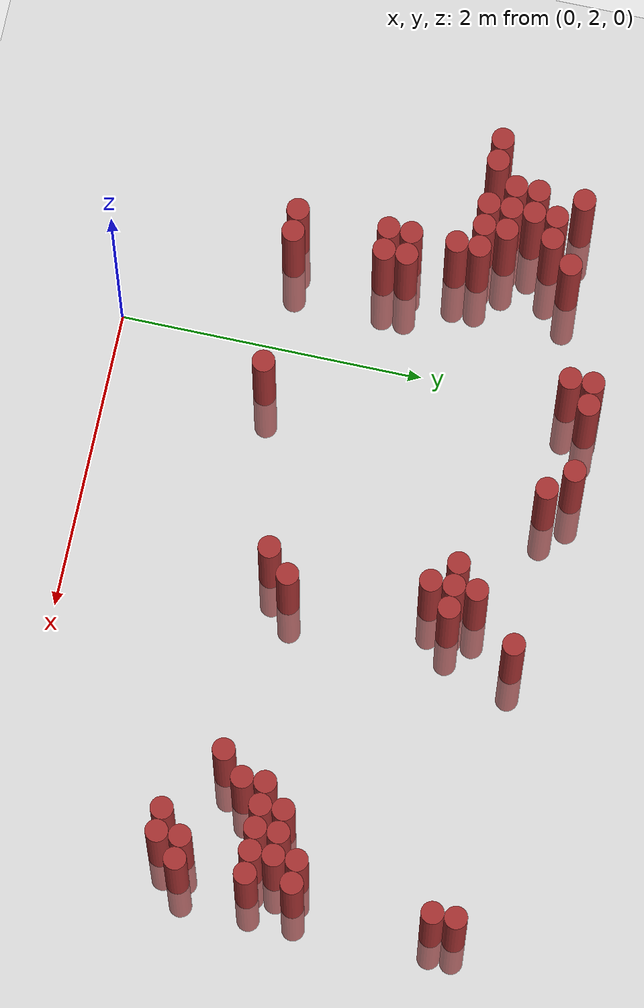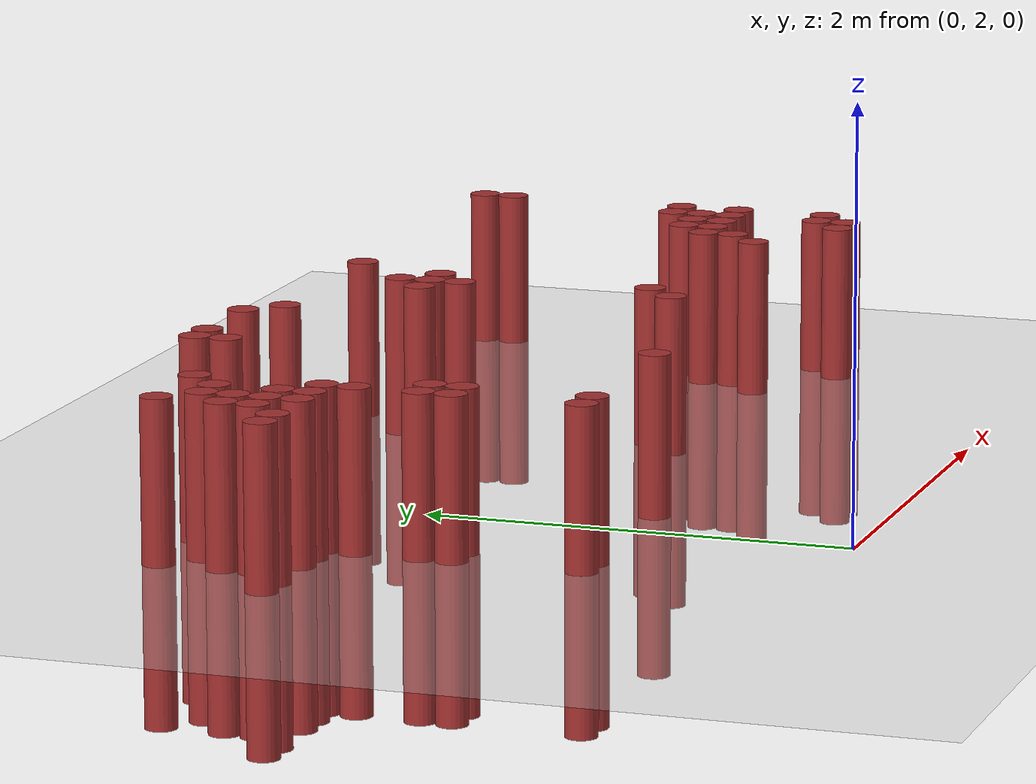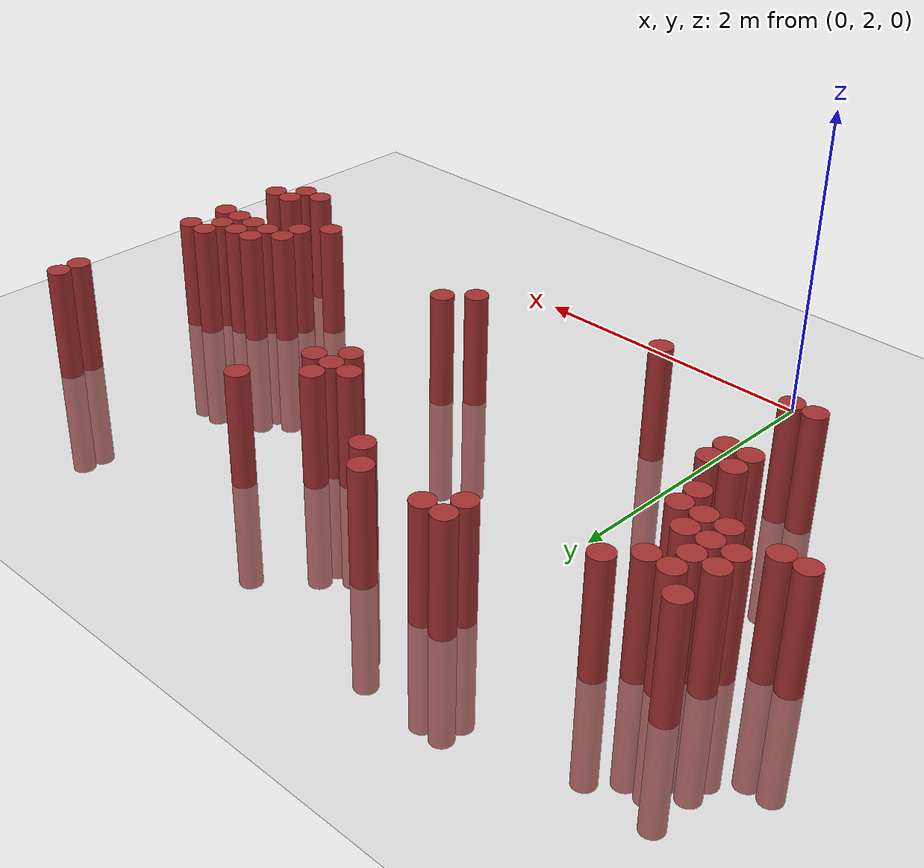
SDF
<sdf version="1.6">
 <world name="default">
  <model name="ground_plane">
   <static>1</static>
   <link name="link">
    <collision name="collision">
     <geometry><plane><normal>0 0 1</normal><size>100 100</size></plane></geometry>
     <surface><friction><ode><mu>100</mu><mu2>50</mu2></ode></friction></surface>
    </collision>
    <visual name="visual">
     <cast_shadows>0</cast_shadows>
     <geometry><plane><normal>0 0 1</normal><size>100 100</size></plane></geometry>
     <material>
      <script><uri>file://media/materials/scripts/gazebo.material</uri><name>Gazebo/Grey</name></script>
     </material>
    </visual>
   </link>
  </model>
  <model name="unit_cylinder_339">
   <static>1</static>
   <pose>-1.475000 4.225000 0.000000 0.000000 0.000000 0.000000</pose>
   <link name="link">
    <inertial>
     <mass>1</mass>
     <inertia><ixx>0.145833</ixx><ixy>0</ixy><ixz>0</ixz><iyy>0.145833</iyy><iyz>0</iyz><izz>0.125</izz></inertia>
    </inertial>
    <collision name="collision">
     <geometry><cylinder><radius>0.075000</radius><length>1.5</length></cylinder></geometry>
    </collision>
    <visual name="visual">
     <geometry><cylinder><radius>0.075000</radius><length>1.5</length></cylinder></geometry>
     <material>
      <ambient>0.648000 0.192000 0.192000 1</ambient>
      <diffuse>0.648000 0.192000 0.192000 1</diffuse>
     </material>
     <material>
      <script><name>Gazebo/Grey</name><uri>file://media/materials/scripts/gazebo.material</uri></script>
     </material>
    </visual>
   </link>
  </model>
  <model name="unit_cylinder_341">
   <static>1</static>
   <pose>-1.325000 4.225000 0.000000 0.000000 0.000000 0.000000</pose>
   <link name="link">
    <inertial>
     <mass>1</mass>
     <inertia><ixx>0.145833</ixx><ixy>0</ixy><ixz>0</ixz><iyy>0.145833</iyy><iyz>0</iyz><izz>0.125</izz></inertia>
    </inertial>
    <collision name="collision">
     <geometry><cylinder><radius>0.075000</radius><length>1.5</length></cylinder></geometry>
    </collision>
    <visual name="visual">
     <geometry><cylinder><radius>0.075000</radius><length>1.5</length></cylinder></geometry>
     <material>
      <ambient>0.648000 0.192000 0.192000 1</ambient>
      <diffuse>0.648000 0.192000 0.192000 1</diffuse>
     </material>
     <material>
      <script><name>Gazebo/Grey</name><uri>file://media/materials/scripts/gazebo.material</uri></script>
     </material>
    </visual>
   </link>
  </model>
  <model name="unit_cylinder_342">
   <static>1</static>
   <pose>-1.175000 4.375000 0.000000 0.000000 0.000000 0.000000</pose>
   <link name="link">
    <inertial>
     <mass>1</mass>
     <inertia><ixx>0.145833</ixx><ixy>0</ixy><ixz>0</ixz><iyy>0.145833</iyy><iyz>0</iyz><izz>0.125</izz></inertia>
    </inertial>
    <collision name="collision">
     <geometry><cylinder><radius>0.075000</radius><length>1.5</length></cylinder></geometry>
    </collision>
    <visual name="visual">
     <geometry><cylinder><radius>0.075000</radius><length>1.5</length></cylinder></geometry>
     <material>
      <ambient>0.648000 0.192000 0.192000 1</ambient>
      <diffuse>0.648000 0.192000 0.192000 1</diffuse>
     </material>
     <material>
      <script><name>Gazebo/Grey</name><uri>file://media/materials/scripts/gazebo.material</uri></script>
     </material>
    </visual>
   </link>
  </model>
  <model name="unit_cylinder_343">
   <static>1</static>
   <pose>-1.175000 4.525000 0.000000 0.000000 0.000000 0.000000</pose>
   <link name="link">
    <inertial>
     <mass>1</mass>
     <inertia><ixx>0.145833</ixx><ixy>0</ixy><ixz>0</ixz><iyy>0.145833</iyy><iyz>0</iyz><izz>0.125</izz></inertia>
    </inertial>
    <collision name="collision">
     <geometry><cylinder><radius>0.075000</radius><length>1.5</length></cylinder></geometry>
    </collision>
    <visual name="visual">
     <geometry><cylinder><radius>0.075000</radius><length>1.5</length></cylinder></geometry>
     <material>
      <ambient>0.648000 0.192000 0.192000 1</ambient>
      <diffuse>0.648000 0.192000 0.192000 1</diffuse>
     </material>
     <material>
      <script><name>Gazebo/Grey</name><uri>file://media/materials/scripts/gazebo.material</uri></script>
     </material>
    </visual>
   </link>
  </model>
  <model name="unit_cylinder_344">
   <static>1</static>
   <pose>-1.175000 4.825000 0.000000 0.000000 0.000000 0.000000</pose>
   <link name="link">
    <inertial>
     <mass>1</mass>
     <inertia><ixx>0.145833</ixx><ixy>0</ixy><ixz>0</ixz><iyy>0.145833</iyy><iyz>0</iyz><izz>0.125</izz></inertia>
    </inertial>
    <collision name="collision">
     <geometry><cylinder><radius>0.075000</radius><length>1.5</length></cylinder></geometry>
    </collision>
    <visual name="visual">
     <geometry><cylinder><radius>0.075000</radius><length>1.5</length></cylinder></geometry>
     <material>
      <ambient>0.648000 0.192000 0.192000 1</ambient>
      <diffuse>0.648000 0.192000 0.192000 1</diffuse>
     </material>
     <material>
      <script><name>Gazebo/Grey</name><uri>file://media/materials/scripts/gazebo.material</uri></script>
     </material>
    </visual>
   </link>
  </model>
  <model name="unit_cylinder_348">
   <static>1</static>
   <pose>-1.025000 4.225000 0.000000 0.000000 0.000000 0.000000</pose>
   <link name="link">
    <inertial>
     <mass>1</mass>
     <inertia><ixx>0.145833</ixx><ixy>0</ixy><ixz>0</ixz><iyy>0.145833</iyy><iyz>0</iyz><izz>0.125</izz></inertia>
    </inertial>
    <collision name="collision">
     <geometry><cylinder><radius>0.075000</radius><length>1.5</length></cylinder></geometry>
    </collision>
    <visual name="visual">
     <geometry><cylinder><radius>0.075000</radius><length>1.5</length></cylinder></geometry>
     <material>
      <ambient>0.648000 0.192000 0.192000 1</ambient>
      <diffuse>0.648000 0.192000 0.192000 1</diffuse>
     </material>
     <material>
      <script><name>Gazebo/Grey</name><uri>file://media/materials/scripts/gazebo.material</uri></script>
     </material>
    </visual>
   </link>
  </model>
  <model name="unit_cylinder_349">
   <static>1</static>
   <pose>-1.025000 4.375000 0.000000 0.000000 0.000000 0.000000</pose>
   <link name="link">
    <inertial>
     <mass>1</mass>
     <inertia><ixx>0.145833</ixx><ixy>0</ixy><ixz>0</ixz><iyy>0.145833</iyy><iyz>0</iyz><izz>0.125</izz></inertia>
    </inertial>
    <collision name="collision">
     <geometry><cylinder><radius>0.075000</radius><length>1.5</length></cylinder></geometry>
    </collision>
    <visual name="visual">
     <geometry><cylinder><radius>0.075000</radius><length>1.5</length></cylinder></geometry>
     <material>
      <ambient>0.648000 0.192000 0.192000 1</ambient>
      <diffuse>0.648000 0.192000 0.192000 1</diffuse>
     </material>
     <material>
      <script><name>Gazebo/Grey</name><uri>file://media/materials/scripts/gazebo.material</uri></script>
     </material>
    </visual>
   </link>
  </model>
  <model name="unit_cylinder_350">
   <static>1</static>
   <pose>-1.025000 4.525000 0.000000 0.000000 0.000000 0.000000</pose>
   <link name="link">
    <inertial>
     <mass>1</mass>
     <inertia><ixx>0.145833</ixx><ixy>0</ixy><ixz>0</ixz><iyy>0.145833</iyy><iyz>0</iyz><izz>0.125</izz></inertia>
    </inertial>
    <collision name="collision">
     <geometry><cylinder><radius>0.075000</radius><length>1.5</length></cylinder></geometry>
    </collision>
    <visual name="visual">
     <geometry><cylinder><radius>0.075000</radius><length>1.5</length></cylinder></geometry>
     <material>
      <ambient>0.648000 0.192000 0.192000 1</ambient>
      <diffuse>0.648000 0.192000 0.192000 1</diffuse>
     </material>
     <material>
      <script><name>Gazebo/Grey</name><uri>file://media/materials/scripts/gazebo.material</uri></script>
     </material>
    </visual>
   </link>
  </model>
  <model name="unit_cylinder_351">
   <static>1</static>
   <pose>-1.025000 4.675000 0.000000 0.000000 0.000000 0.000000</pose>
   <link name="link">
    <inertial>
     <mass>1</mass>
     <inertia><ixx>0.145833</ixx><ixy>0</ixy><ixz>0</ixz><iyy>0.145833</iyy><iyz>0</iyz><izz>0.125</izz></inertia>
    </inertial>
    <collision name="collision">
     <geometry><cylinder><radius>0.075000</radius><length>1.5</length></cylinder></geometry>
    </collision>
    <visual name="visual">
     <geometry><cylinder><radius>0.075000</radius><length>1.5</length></cylinder></geometry>
     <material>
      <ambient>0.648000 0.192000 0.192000 1</ambient>
      <diffuse>0.648000 0.192000 0.192000 1</diffuse>
     </material>
     <material>
      <script><name>Gazebo/Grey</name><uri>file://media/materials/scripts/gazebo.material</uri></script>
     </material>
    </visual>
   </link>
  </model>
  <model name="unit_cylinder_354">
   <static>1</static>
   <pose>-0.875000 4.225000 0.000000 0.000000 0.000000 0.000000</pose>
   <link name="link">
    <inertial>
     <mass>1</mass>
     <inertia><ixx>0.145833</ixx><ixy>0</ixy><ixz>0</ixz><iyy>0.145833</iyy><iyz>0</iyz><izz>0.125</izz></inertia>
    </inertial>
    <collision name="collision">
     <geometry><cylinder><radius>0.075000</radius><length>1.5</length></cylinder></geometry>
    </collision>
    <visual name="visual">
     <geometry><cylinder><radius>0.075000</radius><length>1.5</length></cylinder></geometry>
     <material>
      <ambient>0.648000 0.192000 0.192000 1</ambient>
      <diffuse>0.648000 0.192000 0.192000 1</diffuse>
     </material>
     <material>
      <script><name>Gazebo/Grey</name><uri>file://media/materials/scripts/gazebo.material</uri></script>
     </material>
    </visual>
   </link>
  </model>
  <model name="unit_cylinder_355">
   <static>1</static>
   <pose>-0.875000 4.375000 0.000000 0.000000 0.000000 0.000000</pose>
   <link name="link">
    <inertial>
     <mass>1</mass>
     <inertia><ixx>0.145833</ixx><ixy>0</ixy><ixz>0</ixz><iyy>0.145833</iyy><iyz>0</iyz><izz>0.125</izz></inertia>
    </inertial>
    <collision name="collision">
     <geometry><cylinder><radius>0.075000</radius><length>1.5</length></cylinder></geometry>
    </collision>
    <visual name="visual">
     <geometry><cylinder><radius>0.075000</radius><length>1.5</length></cylinder></geometry>
     <material>
      <ambient>0.648000 0.192000 0.192000 1</ambient>
      <diffuse>0.648000 0.192000 0.192000 1</diffuse>
     </material>
     <material>
      <script><name>Gazebo/Grey</name><uri>file://media/materials/scripts/gazebo.material</uri></script>
     </material>
    </visual>
   </link>
  </model>
  <model name="unit_cylinder_356">
   <static>1</static>
   <pose>-0.875000 4.675000 0.000000 0.000000 0.000000 0.000000</pose>
   <link name="link">
    <inertial>
     <mass>1</mass>
     <inertia><ixx>0.145833</ixx><ixy>0</ixy><ixz>0</ixz><iyy>0.145833</iyy><iyz>0</iyz><izz>0.125</izz></inertia>
    </inertial>
    <collision name="collision">
     <geometry><cylinder><radius>0.075000</radius><length>1.5</length></cylinder></geometry>
    </collision>
    <visual name="visual">
     <geometry><cylinder><radius>0.075000</radius><length>1.5</length></cylinder></geometry>
     <material>
      <ambient>0.648000 0.192000 0.192000 1</ambient>
      <diffuse>0.648000 0.192000 0.192000 1</diffuse>
     </material>
     <material>
      <script><name>Gazebo/Grey</name><uri>file://media/materials/scripts/gazebo.material</uri></script>
     </material>
    </visual>
   </link>
  </model>
  <model name="unit_cylinder_361">
   <static>1</static>
   <pose>-0.725000 3.025000 0.000000 0.000000 0.000000 0.000000</pose>
   <link name="link">
    <inertial>
     <mass>1</mass>
     <inertia><ixx>0.145833</ixx><ixy>0</ixy><ixz>0</ixz><iyy>0.145833</iyy><iyz>0</iyz><izz>0.125</izz></inertia>
    </inertial>
    <collision name="collision">
     <geometry><cylinder><radius>0.075000</radius><length>1.5</length></cylinder></geometry>
    </collision>
    <visual name="visual">
     <geometry><cylinder><radius>0.075000</radius><length>1.5</length></cylinder></geometry>
     <material>
      <ambient>0.648000 0.192000 0.192000 1</ambient>
      <diffuse>0.648000 0.192000 0.192000 1</diffuse>
     </material>
     <material>
      <script><name>Gazebo/Grey</name><uri>file://media/materials/scripts/gazebo.material</uri></script>
     </material>
    </visual>
   </link>
  </model>
  <model name="unit_cylinder_362">
   <static>1</static>
   <pose>-0.725000 3.625000 0.000000 0.000000 0.000000 0.000000</pose>
   <link name="link">
    <inertial>
     <mass>1</mass>
     <inertia><ixx>0.145833</ixx><ixy>0</ixy><ixz>0</ixz><iyy>0.145833</iyy><iyz>0</iyz><izz>0.125</izz></inertia>
    </inertial>
    <collision name="collision">
     <geometry><cylinder><radius>0.075000</radius><length>1.5</length></cylinder></geometry>
    </collision>
    <visual name="visual">
     <geometry><cylinder><radius>0.075000</radius><length>1.5</length></cylinder></geometry>
     <material>
      <ambient>0.648000 0.192000 0.192000 1</ambient>
      <diffuse>0.648000 0.192000 0.192000 1</diffuse>
     </material>
     <material>
      <script><name>Gazebo/Grey</name><uri>file://media/materials/scripts/gazebo.material</uri></script>
     </material>
    </visual>
   </link>
  </model>
  <model name="unit_cylinder_363">
   <static>1</static>
   <pose>-0.725000 3.775000 0.000000 0.000000 0.000000 0.000000</pose>
   <link name="link">
    <inertial>
     <mass>1</mass>
     <inertia><ixx>0.145833</ixx><ixy>0</ixy><ixz>0</ixz><iyy>0.145833</iyy><iyz>0</iyz><izz>0.125</izz></inertia>
    </inertial>
    <collision name="collision">
     <geometry><cylinder><radius>0.075000</radius><length>1.5</length></cylinder></geometry>
    </collision>
    <visual name="visual">
     <geometry><cylinder><radius>0.075000</radius><length>1.5</length></cylinder></geometry>
     <material>
      <ambient>0.648000 0.192000 0.192000 1</ambient>
      <diffuse>0.648000 0.192000 0.192000 1</diffuse>
     </material>
     <material>
      <script><name>Gazebo/Grey</name><uri>file://media/materials/scripts/gazebo.material</uri></script>
     </material>
    </visual>
   </link>
  </model>
  <model name="unit_cylinder_364">
   <static>1</static>
   <pose>-0.725000 4.075000 0.000000 0.000000 0.000000 0.000000</pose>
   <link name="link">
    <inertial>
     <mass>1</mass>
     <inertia><ixx>0.145833</ixx><ixy>0</ixy><ixz>0</ixz><iyy>0.145833</iyy><iyz>0</iyz><izz>0.125</izz></inertia>
    </inertial>
    <collision name="collision">
     <geometry><cylinder><radius>0.075000</radius><length>1.5</length></cylinder></geometry>
    </collision>
    <visual name="visual">
     <geometry><cylinder><radius>0.075000</radius><length>1.5</length></cylinder></geometry>
     <material>
      <ambient>0.648000 0.192000 0.192000 1</ambient>
      <diffuse>0.648000 0.192000 0.192000 1</diffuse>
     </material>
     <material>
      <script><name>Gazebo/Grey</name><uri>file://media/materials/scripts/gazebo.material</uri></script>
     </material>
    </visual>
   </link>
  </model>
  <model name="unit_cylinder_365">
   <static>1</static>
   <pose>-0.725000 4.225000 0.000000 0.000000 0.000000 0.000000</pose>
   <link name="link">
    <inertial>
     <mass>1</mass>
     <inertia><ixx>0.145833</ixx><ixy>0</ixy><ixz>0</ixz><iyy>0.145833</iyy><iyz>0</iyz><izz>0.125</izz></inertia>
    </inertial>
    <collision name="collision">
     <geometry><cylinder><radius>0.075000</radius><length>1.5</length></cylinder></geometry>
    </collision>
    <visual name="visual">
     <geometry><cylinder><radius>0.075000</radius><length>1.5</length></cylinder></geometry>
     <material>
      <ambient>0.648000 0.192000 0.192000 1</ambient>
      <diffuse>0.648000 0.192000 0.192000 1</diffuse>
     </material>
     <material>
      <script><name>Gazebo/Grey</name><uri>file://media/materials/scripts/gazebo.material</uri></script>
     </material>
    </visual>
   </link>
  </model>
  <model name="unit_cylinder_366">
   <static>1</static>
   <pose>-0.725000 4.825000 0.000000 0.000000 0.000000 0.000000</pose>
   <link name="link">
    <inertial>
     <mass>1</mass>
     <inertia><ixx>0.145833</ixx><ixy>0</ixy><ixz>0</ixz><iyy>0.145833</iyy><iyz>0</iyz><izz>0.125</izz></inertia>
    </inertial>
    <collision name="collision">
     <geometry><cylinder><radius>0.075000</radius><length>1.5</length></cylinder></geometry>
    </collision>
    <visual name="visual">
     <geometry><cylinder><radius>0.075000</radius><length>1.5</length></cylinder></geometry>
     <material>
      <ambient>0.648000 0.192000 0.192000 1</ambient>
      <diffuse>0.648000 0.192000 0.192000 1</diffuse>
     </material>
     <material>
      <script><name>Gazebo/Grey</name><uri>file://media/materials/scripts/gazebo.material</uri></script>
     </material>
    </visual>
   </link>
  </model>
  <model name="unit_cylinder_370">
   <static>1</static>
   <pose>-0.575000 3.025000 0.000000 0.000000 0.000000 0.000000</pose>
   <link name="link">
    <inertial>
     <mass>1</mass>
     <inertia><ixx>0.145833</ixx><ixy>0</ixy><ixz>0</ixz><iyy>0.145833</iyy><iyz>0</iyz><izz>0.125</izz></inertia>
    </inertial>
    <collision name="collision">
     <geometry><cylinder><radius>0.075000</radius><length>1.5</length></cylinder></geometry>
    </collision>
    <visual name="visual">
     <geometry><cylinder><radius>0.075000</radius><length>1.5</length></cylinder></geometry>
     <material>
      <ambient>0.648000 0.192000 0.192000 1</ambient>
      <diffuse>0.648000 0.192000 0.192000 1</diffuse>
     </material>
     <material>
      <script><name>Gazebo/Grey</name><uri>file://media/materials/scripts/gazebo.material</uri></script>
     </material>
    </visual>
   </link>
  </model>
  <model name="unit_cylinder_371">
   <static>1</static>
   <pose>-0.575000 3.625000 0.000000 0.000000 0.000000 0.000000</pose>
   <link name="link">
    <inertial>
     <mass>1</mass>
     <inertia><ixx>0.145833</ixx><ixy>0</ixy><ixz>0</ixz><iyy>0.145833</iyy><iyz>0</iyz><izz>0.125</izz></inertia>
    </inertial>
    <collision name="collision">
     <geometry><cylinder><radius>0.075000</radius><length>1.5</length></cylinder></geometry>
    </collision>
    <visual name="visual">
     <geometry><cylinder><radius>0.075000</radius><length>1.5</length></cylinder></geometry>
     <material>
      <ambient>0.648000 0.192000 0.192000 1</ambient>
      <diffuse>0.648000 0.192000 0.192000 1</diffuse>
     </material>
     <material>
      <script><name>Gazebo/Grey</name><uri>file://media/materials/scripts/gazebo.material</uri></script>
     </material>
    </visual>
   </link>
  </model>
  <model name="unit_cylinder_372">
   <static>1</static>
   <pose>-0.575000 3.775000 0.000000 0.000000 0.000000 0.000000</pose>
   <link name="link">
    <inertial>
     <mass>1</mass>
     <inertia><ixx>0.145833</ixx><ixy>0</ixy><ixz>0</ixz><iyy>0.145833</iyy><iyz>0</iyz><izz>0.125</izz></inertia>
    </inertial>
    <collision name="collision">
     <geometry><cylinder><radius>0.075000</radius><length>1.5</length></cylinder></geometry>
    </collision>
    <visual name="visual">
     <geometry><cylinder><radius>0.075000</radius><length>1.5</length></cylinder></geometry>
     <material>
      <ambient>0.648000 0.192000 0.192000 1</ambient>
      <diffuse>0.648000 0.192000 0.192000 1</diffuse>
     </material>
     <material>
      <script><name>Gazebo/Grey</name><uri>file://media/materials/scripts/gazebo.material</uri></script>
     </material>
    </visual>
   </link>
  </model>
  <model name="unit_cylinder_377">
   <static>1</static>
   <pose>0.025000 4.975000 0.000000 0.000000 0.000000 0.000000</pose>
   <link name="link">
    <inertial>
     <mass>1</mass>
     <inertia><ixx>0.145833</ixx><ixy>0</ixy><ixz>0</ixz><iyy>0.145833</iyy><iyz>0</iyz><izz>0.125</izz></inertia>
    </inertial>
    <collision name="collision">
     <geometry><cylinder><radius>0.075000</radius><length>1.5</length></cylinder></geometry>
    </collision>
    <visual name="visual">
     <geometry><cylinder><radius>0.075000</radius><length>1.5</length></cylinder></geometry>
     <material>
      <ambient>0.648000 0.192000 0.192000 1</ambient>
      <diffuse>0.648000 0.192000 0.192000 1</diffuse>
     </material>
     <material>
      <script><name>Gazebo/Grey</name><uri>file://media/materials/scripts/gazebo.material</uri></script>
     </material>
    </visual>
   </link>
  </model>
  <model name="unit_cylinder_378">
   <static>1</static>
   <pose>0.025000 5.125000 0.000000 0.000000 0.000000 0.000000</pose>
   <link name="link">
    <inertial>
     <mass>1</mass>
     <inertia><ixx>0.145833</ixx><ixy>0</ixy><ixz>0</ixz><iyy>0.145833</iyy><iyz>0</iyz><izz>0.125</izz></inertia>
    </inertial>
    <collision name="collision">
     <geometry><cylinder><radius>0.075000</radius><length>1.5</length></cylinder></geometry>
    </collision>
    <visual name="visual">
     <geometry><cylinder><radius>0.075000</radius><length>1.5</length></cylinder></geometry>
     <material>
      <ambient>0.648000 0.192000 0.192000 1</ambient>
      <diffuse>0.648000 0.192000 0.192000 1</diffuse>
     </material>
     <material>
      <script><name>Gazebo/Grey</name><uri>file://media/materials/scripts/gazebo.material</uri></script>
     </material>
    </visual>
   </link>
  </model>
  <model name="unit_cylinder_380">
   <static>1</static>
   <pose>0.175000 5.125000 0.000000 0.000000 0.000000 0.000000</pose>
   <link name="link">
    <inertial>
     <mass>1</mass>
     <inertia><ixx>0.145833</ixx><ixy>0</ixy><ixz>0</ixz><iyy>0.145833</iyy><iyz>0</iyz><izz>0.125</izz></inertia>
    </inertial>
    <collision name="collision">
     <geometry><cylinder><radius>0.075000</radius><length>1.5</length></cylinder></geometry>
    </collision>
    <visual name="visual">
     <geometry><cylinder><radius>0.075000</radius><length>1.5</length></cylinder></geometry>
     <material>
      <ambient>0.648000 0.192000 0.192000 1</ambient>
      <diffuse>0.648000 0.192000 0.192000 1</diffuse>
     </material>
     <material>
      <script><name>Gazebo/Grey</name><uri>file://media/materials/scripts/gazebo.material</uri></script>
     </material>
    </visual>
   </link>
  </model>
  <model name="unit_cylinder_382">
   <static>1</static>
   <pose>0.325000 3.025000 0.000000 0.000000 0.000000 0.000000</pose>
   <link name="link">
    <inertial>
     <mass>1</mass>
     <inertia><ixx>0.145833</ixx><ixy>0</ixy><ixz>0</ixz><iyy>0.145833</iyy><iyz>0</iyz><izz>0.125</izz></inertia>
    </inertial>
    <collision name="collision">
     <geometry><cylinder><radius>0.075000</radius><length>1.5</length></cylinder></geometry>
    </collision>
    <visual name="visual">
     <geometry><cylinder><radius>0.075000</radius><length>1.5</length></cylinder></geometry>
     <material>
      <ambient>0.648000 0.192000 0.192000 1</ambient>
      <diffuse>0.648000 0.192000 0.192000 1</diffuse>
     </material>
     <material>
      <script><name>Gazebo/Grey</name><uri>file://media/materials/scripts/gazebo.material</uri></script>
     </material>
    </visual>
   </link>
  </model>
  <model name="unit_cylinder_385">
   <static>1</static>
   <pose>0.625000 5.125000 0.000000 0.000000 0.000000 0.000000</pose>
   <link name="link">
    <inertial>
     <mass>1</mass>
     <inertia><ixx>0.145833</ixx><ixy>0</ixy><ixz>0</ixz><iyy>0.145833</iyy><iyz>0</iyz><izz>0.125</izz></inertia>
    </inertial>
    <collision name="collision">
     <geometry><cylinder><radius>0.075000</radius><length>1.5</length></cylinder></geometry>
    </collision>
    <visual name="visual">
     <geometry><cylinder><radius>0.075000</radius><length>1.5</length></cylinder></geometry>
     <material>
      <ambient>0.648000 0.192000 0.192000 1</ambient>
      <diffuse>0.648000 0.192000 0.192000 1</diffuse>
     </material>
     <material>
      <script><name>Gazebo/Grey</name><uri>file://media/materials/scripts/gazebo.material</uri></script>
     </material>
    </visual>
   </link>
  </model>
  <model name="unit_cylinder_389">
   <static>1</static>
   <pose>0.775000 4.975000 0.000000 0.000000 0.000000 0.000000</pose>
   <link name="link">
    <inertial>
     <mass>1</mass>
     <inertia><ixx>0.145833</ixx><ixy>0</ixy><ixz>0</ixz><iyy>0.145833</iyy><iyz>0</iyz><izz>0.125</izz></inertia>
    </inertial>
    <collision name="collision">
     <geometry><cylinder><radius>0.075000</radius><length>1.5</length></cylinder></geometry>
    </collision>
    <visual name="visual">
     <geometry><cylinder><radius>0.075000</radius><length>1.5</length></cylinder></geometry>
     <material>
      <ambient>0.648000 0.192000 0.192000 1</ambient>
      <diffuse>0.648000 0.192000 0.192000 1</diffuse>
     </material>
     <material>
      <script><name>Gazebo/Grey</name><uri>file://media/materials/scripts/gazebo.material</uri></script>
     </material>
    </visual>
   </link>
  </model>
  <model name="unit_cylinder_398">
   <static>1</static>
   <pose>1.375000 4.525000 0.000000 0.000000 0.000000 0.000000</pose>
   <link name="link">
    <inertial>
     <mass>1</mass>
     <inertia><ixx>0.145833</ixx><ixy>0</ixy><ixz>0</ixz><iyy>0.145833</iyy><iyz>0</iyz><izz>0.125</izz></inertia>
    </inertial>
    <collision name="collision">
     <geometry><cylinder><radius>0.075000</radius><length>1.5</length></cylinder></geometry>
    </collision>
    <visual name="visual">
     <geometry><cylinder><radius>0.075000</radius><length>1.5</length></cylinder></geometry>
     <material>
      <ambient>0.648000 0.192000 0.192000 1</ambient>
      <diffuse>0.648000 0.192000 0.192000 1</diffuse>
     </material>
     <material>
      <script><name>Gazebo/Grey</name><uri>file://media/materials/scripts/gazebo.material</uri></script>
     </material>
    </visual>
   </link>
  </model>
  <model name="unit_cylinder_400">
   <static>1</static>
   <pose>1.525000 3.325000 0.000000 0.000000 0.000000 0.000000</pose>
   <link name="link">
    <inertial>
     <mass>1</mass>
     <inertia><ixx>0.145833</ixx><ixy>0</ixy><ixz>0</ixz><iyy>0.145833</iyy><iyz>0</iyz><izz>0.125</izz></inertia>
    </inertial>
    <collision name="collision">
     <geometry><cylinder><radius>0.075000</radius><length>1.5</length></cylinder></geometry>
    </collision>
    <visual name="visual">
     <geometry><cylinder><radius>0.075000</radius><length>1.5</length></cylinder></geometry>
     <material>
      <ambient>0.648000 0.192000 0.192000 1</ambient>
      <diffuse>0.648000 0.192000 0.192000 1</diffuse>
     </material>
     <material>
      <script><name>Gazebo/Grey</name><uri>file://media/materials/scripts/gazebo.material</uri></script>
     </material>
    </visual>
   </link>
  </model>
  <model name="unit_cylinder_401">
   <static>1</static>
   <pose>1.525000 4.375000 0.000000 0.000000 0.000000 0.000000</pose>
   <link name="link">
    <inertial>
     <mass>1</mass>
     <inertia><ixx>0.145833</ixx><ixy>0</ixy><ixz>0</ixz><iyy>0.145833</iyy><iyz>0</iyz><izz>0.125</izz></inertia>
    </inertial>
    <collision name="collision">
     <geometry><cylinder><radius>0.075000</radius><length>1.5</length></cylinder></geometry>
    </collision>
    <visual name="visual">
     <geometry><cylinder><radius>0.075000</radius><length>1.5</length></cylinder></geometry>
     <material>
      <ambient>0.648000 0.192000 0.192000 1</ambient>
      <diffuse>0.648000 0.192000 0.192000 1</diffuse>
     </material>
     <material>
      <script><name>Gazebo/Grey</name><uri>file://media/materials/scripts/gazebo.material</uri></script>
     </material>
    </visual>
   </link>
  </model>
  <model name="unit_cylinder_402">
   <static>1</static>
   <pose>1.525000 4.525000 0.000000 0.000000 0.000000 0.000000</pose>
   <link name="link">
    <inertial>
     <mass>1</mass>
     <inertia><ixx>0.145833</ixx><ixy>0</ixy><ixz>0</ixz><iyy>0.145833</iyy><iyz>0</iyz><izz>0.125</izz></inertia>
    </inertial>
    <collision name="collision">
     <geometry><cylinder><radius>0.075000</radius><length>1.5</length></cylinder></geometry>
    </collision>
    <visual name="visual">
     <geometry><cylinder><radius>0.075000</radius><length>1.5</length></cylinder></geometry>
     <material>
      <ambient>0.648000 0.192000 0.192000 1</ambient>
      <diffuse>0.648000 0.192000 0.192000 1</diffuse>
     </material>
     <material>
      <script><name>Gazebo/Grey</name><uri>file://media/materials/scripts/gazebo.material</uri></script>
     </material>
    </visual>
   </link>
  </model>
  <model name="unit_cylinder_403">
   <static>1</static>
   <pose>1.525000 4.675000 0.000000 0.000000 0.000000 0.000000</pose>
   <link name="link">
    <inertial>
     <mass>1</mass>
     <inertia><ixx>0.145833</ixx><ixy>0</ixy><ixz>0</ixz><iyy>0.145833</iyy><iyz>0</iyz><izz>0.125</izz></inertia>
    </inertial>
    <collision name="collision">
     <geometry><cylinder><radius>0.075000</radius><length>1.5</length></cylinder></geometry>
    </collision>
    <visual name="visual">
     <geometry><cylinder><radius>0.075000</radius><length>1.5</length></cylinder></geometry>
     <material>
      <ambient>0.648000 0.192000 0.192000 1</ambient>
      <diffuse>0.648000 0.192000 0.192000 1</diffuse>
     </material>
     <material>
      <script><name>Gazebo/Grey</name><uri>file://media/materials/scripts/gazebo.material</uri></script>
     </material>
    </visual>
   </link>
  </model>
  <model name="unit_cylinder_408">
   <static>1</static>
   <pose>1.675000 3.475000 0.000000 0.000000 0.000000 0.000000</pose>
   <link name="link">
    <inertial>
     <mass>1</mass>
     <inertia><ixx>0.145833</ixx><ixy>0</ixy><ixz>0</ixz><iyy>0.145833</iyy><iyz>0</iyz><izz>0.125</izz></inertia>
    </inertial>
    <collision name="collision">
     <geometry><cylinder><radius>0.075000</radius><length>1.5</length></cylinder></geometry>
    </collision>
    <visual name="visual">
     <geometry><cylinder><radius>0.075000</radius><length>1.5</length></cylinder></geometry>
     <material>
      <ambient>0.648000 0.192000 0.192000 1</ambient>
      <diffuse>0.648000 0.192000 0.192000 1</diffuse>
     </material>
     <material>
      <script><name>Gazebo/Grey</name><uri>file://media/materials/scripts/gazebo.material</uri></script>
     </material>
    </visual>
   </link>
  </model>
  <model name="unit_cylinder_409">
   <static>1</static>
   <pose>1.675000 4.525000 0.000000 0.000000 0.000000 0.000000</pose>
   <link name="link">
    <inertial>
     <mass>1</mass>
     <inertia><ixx>0.145833</ixx><ixy>0</ixy><ixz>0</ixz><iyy>0.145833</iyy><iyz>0</iyz><izz>0.125</izz></inertia>
    </inertial>
    <collision name="collision">
     <geometry><cylinder><radius>0.075000</radius><length>1.5</length></cylinder></geometry>
    </collision>
    <visual name="visual">
     <geometry><cylinder><radius>0.075000</radius><length>1.5</length></cylinder></geometry>
     <material>
      <ambient>0.648000 0.192000 0.192000 1</ambient>
      <diffuse>0.648000 0.192000 0.192000 1</diffuse>
     </material>
     <material>
      <script><name>Gazebo/Grey</name><uri>file://media/materials/scripts/gazebo.material</uri></script>
     </material>
    </visual>
   </link>
  </model>
  <model name="unit_cylinder_413">
   <static>1</static>
   <pose>1.825000 4.975000 0.000000 0.000000 0.000000 0.000000</pose>
   <link name="link">
    <inertial>
     <mass>1</mass>
     <inertia><ixx>0.145833</ixx><ixy>0</ixy><ixz>0</ixz><iyy>0.145833</iyy><iyz>0</iyz><izz>0.125</izz></inertia>
    </inertial>
    <collision name="collision">
     <geometry><cylinder><radius>0.075000</radius><length>1.5</length></cylinder></geometry>
    </collision>
    <visual name="visual">
     <geometry><cylinder><radius>0.075000</radius><length>1.5</length></cylinder></geometry>
     <material>
      <ambient>0.648000 0.192000 0.192000 1</ambient>
      <diffuse>0.648000 0.192000 0.192000 1</diffuse>
     </material>
     <material>
      <script><name>Gazebo/Grey</name><uri>file://media/materials/scripts/gazebo.material</uri></script>
     </material>
    </visual>
   </link>
  </model>
  <model name="unit_cylinder_429">
   <static>1</static>
   <pose>2.875000 3.325000 0.000000 0.000000 0.000000 0.000000</pose>
   <link name="link">
    <inertial>
     <mass>1</mass>
     <inertia><ixx>0.145833</ixx><ixy>0</ixy><ixz>0</ixz><iyy>0.145833</iyy><iyz>0</iyz><izz>0.125</izz></inertia>
    </inertial>
    <collision name="collision">
     <geometry><cylinder><radius>0.075000</radius><length>1.5</length></cylinder></geometry>
    </collision>
    <visual name="visual">
     <geometry><cylinder><radius>0.075000</radius><length>1.5</length></cylinder></geometry>
     <material>
      <ambient>0.648000 0.192000 0.192000 1</ambient>
      <diffuse>0.648000 0.192000 0.192000 1</diffuse>
     </material>
     <material>
      <script><name>Gazebo/Grey</name><uri>file://media/materials/scripts/gazebo.material</uri></script>
     </material>
    </visual>
   </link>
  </model>
  <model name="unit_cylinder_430">
   <static>1</static>
   <pose>3.025000 3.475000 0.000000 0.000000 0.000000 0.000000</pose>
   <link name="link">
    <inertial>
     <mass>1</mass>
     <inertia><ixx>0.145833</ixx><ixy>0</ixy><ixz>0</ixz><iyy>0.145833</iyy><iyz>0</iyz><izz>0.125</izz></inertia>
    </inertial>
    <collision name="collision">
     <geometry><cylinder><radius>0.075000</radius><length>1.5</length></cylinder></geometry>
    </collision>
    <visual name="visual">
     <geometry><cylinder><radius>0.075000</radius><length>1.5</length></cylinder></geometry>
     <material>
      <ambient>0.648000 0.192000 0.192000 1</ambient>
      <diffuse>0.648000 0.192000 0.192000 1</diffuse>
     </material>
     <material>
      <script><name>Gazebo/Grey</name><uri>file://media/materials/scripts/gazebo.material</uri></script>
     </material>
    </visual>
   </link>
  </model>
  <model name="unit_cylinder_431">
   <static>1</static>
   <pose>3.025000 3.625000 0.000000 0.000000 0.000000 0.000000</pose>
   <link name="link">
    <inertial>
     <mass>1</mass>
     <inertia><ixx>0.145833</ixx><ixy>0</ixy><ixz>0</ixz><iyy>0.145833</iyy><iyz>0</iyz><izz>0.125</izz></inertia>
    </inertial>
    <collision name="collision">
     <geometry><cylinder><radius>0.075000</radius><length>1.5</length></cylinder></geometry>
    </collision>
    <visual name="visual">
     <geometry><cylinder><radius>0.075000</radius><length>1.5</length></cylinder></geometry>
     <material>
      <ambient>0.648000 0.192000 0.192000 1</ambient>
      <diffuse>0.648000 0.192000 0.192000 1</diffuse>
     </material>
     <material>
      <script><name>Gazebo/Grey</name><uri>file://media/materials/scripts/gazebo.material</uri></script>
     </material>
    </visual>
   </link>
  </model>
  <model name="unit_cylinder_432">
   <static>1</static>
   <pose>3.175000 3.625000 0.000000 0.000000 0.000000 0.000000</pose>
   <link name="link">
    <inertial>
     <mass>1</mass>
     <inertia><ixx>0.145833</ixx><ixy>0</ixy><ixz>0</ixz><iyy>0.145833</iyy><iyz>0</iyz><izz>0.125</izz></inertia>
    </inertial>
    <collision name="collision">
     <geometry><cylinder><radius>0.075000</radius><length>1.5</length></cylinder></geometry>
    </collision>
    <visual name="visual">
     <geometry><cylinder><radius>0.075000</radius><length>1.5</length></cylinder></geometry>
     <material>
      <ambient>0.648000 0.192000 0.192000 1</ambient>
      <diffuse>0.648000 0.192000 0.192000 1</diffuse>
     </material>
     <material>
      <script><name>Gazebo/Grey</name><uri>file://media/materials/scripts/gazebo.material</uri></script>
     </material>
    </visual>
   </link>
  </model>
  <model name="unit_cylinder_433">
   <static>1</static>
   <pose>3.175000 3.775000 0.000000 0.000000 0.000000 0.000000</pose>
   <link name="link">
    <inertial>
     <mass>1</mass>
     <inertia><ixx>0.145833</ixx><ixy>0</ixy><ixz>0</ixz><iyy>0.145833</iyy><iyz>0</iyz><izz>0.125</izz></inertia>
    </inertial>
    <collision name="collision">
     <geometry><cylinder><radius>0.075000</radius><length>1.5</length></cylinder></geometry>
    </collision>
    <visual name="visual">
     <geometry><cylinder><radius>0.075000</radius><length>1.5</length></cylinder></geometry>
     <material>
      <ambient>0.648000 0.192000 0.192000 1</ambient>
      <diffuse>0.648000 0.192000 0.192000 1</diffuse>
     </material>
     <material>
      <script><name>Gazebo/Grey</name><uri>file://media/materials/scripts/gazebo.material</uri></script>
     </material>
    </visual>
   </link>
  </model>
  <model name="unit_cylinder_434">
   <static>1</static>
   <pose>3.325000 3.025000 0.000000 0.000000 0.000000 0.000000</pose>
   <link name="link">
    <inertial>
     <mass>1</mass>
     <inertia><ixx>0.145833</ixx><ixy>0</ixy><ixz>0</ixz><iyy>0.145833</iyy><iyz>0</iyz><izz>0.125</izz></inertia>
    </inertial>
    <collision name="collision">
     <geometry><cylinder><radius>0.075000</radius><length>1.5</length></cylinder></geometry>
    </collision>
    <visual name="visual">
     <geometry><cylinder><radius>0.075000</radius><length>1.5</length></cylinder></geometry>
     <material>
      <ambient>0.648000 0.192000 0.192000 1</ambient>
      <diffuse>0.648000 0.192000 0.192000 1</diffuse>
     </material>
     <material>
      <script><name>Gazebo/Grey</name><uri>file://media/materials/scripts/gazebo.material</uri></script>
     </material>
    </visual>
   </link>
  </model>
  <model name="unit_cylinder_435">
   <static>1</static>
   <pose>3.325000 3.625000 0.000000 0.000000 0.000000 0.000000</pose>
   <link name="link">
    <inertial>
     <mass>1</mass>
     <inertia><ixx>0.145833</ixx><ixy>0</ixy><ixz>0</ixz><iyy>0.145833</iyy><iyz>0</iyz><izz>0.125</izz></inertia>
    </inertial>
    <collision name="collision">
     <geometry><cylinder><radius>0.075000</radius><length>1.5</length></cylinder></geometry>
    </collision>
    <visual name="visual">
     <geometry><cylinder><radius>0.075000</radius><length>1.5</length></cylinder></geometry>
     <material>
      <ambient>0.648000 0.192000 0.192000 1</ambient>
      <diffuse>0.648000 0.192000 0.192000 1</diffuse>
     </material>
     <material>
      <script><name>Gazebo/Grey</name><uri>file://media/materials/scripts/gazebo.material</uri></script>
     </material>
    </visual>
   </link>
  </model>
  <model name="unit_cylinder_436">
   <static>1</static>
   <pose>3.325000 3.775000 0.000000 0.000000 0.000000 0.000000</pose>
   <link name="link">
    <inertial>
     <mass>1</mass>
     <inertia><ixx>0.145833</ixx><ixy>0</ixy><ixz>0</ixz><iyy>0.145833</iyy><iyz>0</iyz><izz>0.125</izz></inertia>
    </inertial>
    <collision name="collision">
     <geometry><cylinder><radius>0.075000</radius><length>1.5</length></cylinder></geometry>
    </collision>
    <visual name="visual">
     <geometry><cylinder><radius>0.075000</radius><length>1.5</length></cylinder></geometry>
     <material>
      <ambient>0.648000 0.192000 0.192000 1</ambient>
      <diffuse>0.648000 0.192000 0.192000 1</diffuse>
     </material>
     <material>
      <script><name>Gazebo/Grey</name><uri>file://media/materials/scripts/gazebo.material</uri></script>
     </material>
    </visual>
   </link>
  </model>
  <model name="unit_cylinder_440">
   <static>1</static>
   <pose>3.475000 3.025000 0.000000 0.000000 0.000000 0.000000</pose>
   <link name="link">
    <inertial>
     <mass>1</mass>
     <inertia><ixx>0.145833</ixx><ixy>0</ixy><ixz>0</ixz><iyy>0.145833</iyy><iyz>0</iyz><izz>0.125</izz></inertia>
    </inertial>
    <collision name="collision">
     <geometry><cylinder><radius>0.075000</radius><length>1.5</length></cylinder></geometry>
    </collision>
    <visual name="visual">
     <geometry><cylinder><radius>0.075000</radius><length>1.5</length></cylinder></geometry>
     <material>
      <ambient>0.648000 0.192000 0.192000 1</ambient>
      <diffuse>0.648000 0.192000 0.192000 1</diffuse>
     </material>
     <material>
      <script><name>Gazebo/Grey</name><uri>file://media/materials/scripts/gazebo.material</uri></script>
     </material>
    </visual>
   </link>
  </model>
  <model name="unit_cylinder_441">
   <static>1</static>
   <pose>3.475000 3.175000 0.000000 0.000000 0.000000 0.000000</pose>
   <link name="link">
    <inertial>
     <mass>1</mass>
     <inertia><ixx>0.145833</ixx><ixy>0</ixy><ixz>0</ixz><iyy>0.145833</iyy><iyz>0</iyz><izz>0.125</izz></inertia>
    </inertial>
    <collision name="collision">
     <geometry><cylinder><radius>0.075000</radius><length>1.5</length></cylinder></geometry>
    </collision>
    <visual name="visual">
     <geometry><cylinder><radius>0.075000</radius><length>1.5</length></cylinder></geometry>
     <material>
      <ambient>0.648000 0.192000 0.192000 1</ambient>
      <diffuse>0.648000 0.192000 0.192000 1</diffuse>
     </material>
     <material>
      <script><name>Gazebo/Grey</name><uri>file://media/materials/scripts/gazebo.material</uri></script>
     </material>
    </visual>
   </link>
  </model>
  <model name="unit_cylinder_442">
   <static>1</static>
   <pose>3.475000 3.625000 0.000000 0.000000 0.000000 0.000000</pose>
   <link name="link">
    <inertial>
     <mass>1</mass>
     <inertia><ixx>0.145833</ixx><ixy>0</ixy><ixz>0</ixz><iyy>0.145833</iyy><iyz>0</iyz><izz>0.125</izz></inertia>
    </inertial>
    <collision name="collision">
     <geometry><cylinder><radius>0.075000</radius><length>1.5</length></cylinder></geometry>
    </collision>
    <visual name="visual">
     <geometry><cylinder><radius>0.075000</radius><length>1.5</length></cylinder></geometry>
     <material>
      <ambient>0.648000 0.192000 0.192000 1</ambient>
      <diffuse>0.648000 0.192000 0.192000 1</diffuse>
     </material>
     <material>
      <script><name>Gazebo/Grey</name><uri>file://media/materials/scripts/gazebo.material</uri></script>
     </material>
    </visual>
   </link>
  </model>
  <model name="unit_cylinder_443">
   <static>1</static>
   <pose>3.475000 3.775000 0.000000 0.000000 0.000000 0.000000</pose>
   <link name="link">
    <inertial>
     <mass>1</mass>
     <inertia><ixx>0.145833</ixx><ixy>0</ixy><ixz>0</ixz><iyy>0.145833</iyy><iyz>0</iyz><izz>0.125</izz></inertia>
    </inertial>
    <collision name="collision">
     <geometry><cylinder><radius>0.075000</radius><length>1.5</length></cylinder></geometry>
    </collision>
    <visual name="visual">
     <geometry><cylinder><radius>0.075000</radius><length>1.5</length></cylinder></geometry>
     <material>
      <ambient>0.648000 0.192000 0.192000 1</ambient>
      <diffuse>0.648000 0.192000 0.192000 1</diffuse>
     </material>
     <material>
      <script><name>Gazebo/Grey</name><uri>file://media/materials/scripts/gazebo.material</uri></script>
     </material>
    </visual>
   </link>
  </model>
  <model name="unit_cylinder_444">
   <static>1</static>
   <pose>3.475000 3.925000 0.000000 0.000000 0.000000 0.000000</pose>
   <link name="link">
    <inertial>
     <mass>1</mass>
     <inertia><ixx>0.145833</ixx><ixy>0</ixy><ixz>0</ixz><iyy>0.145833</iyy><iyz>0</iyz><izz>0.125</izz></inertia>
    </inertial>
    <collision name="collision">
     <geometry><cylinder><radius>0.075000</radius><length>1.5</length></cylinder></geometry>
    </collision>
    <visual name="visual">
     <geometry><cylinder><radius>0.075000</radius><length>1.5</length></cylinder></geometry>
     <material>
      <ambient>0.648000 0.192000 0.192000 1</ambient>
      <diffuse>0.648000 0.192000 0.192000 1</diffuse>
     </material>
     <material>
      <script><name>Gazebo/Grey</name><uri>file://media/materials/scripts/gazebo.material</uri></script>
     </material>
    </visual>
   </link>
  </model>
  <model name="unit_cylinder_450">
   <static>1</static>
   <pose>3.625000 3.175000 0.000000 0.000000 0.000000 0.000000</pose>
   <link name="link">
    <inertial>
     <mass>1</mass>
     <inertia><ixx>0.145833</ixx><ixy>0</ixy><ixz>0</ixz><iyy>0.145833</iyy><iyz>0</iyz><izz>0.125</izz></inertia>
    </inertial>
    <collision name="collision">
     <geometry><cylinder><radius>0.075000</radius><length>1.5</length></cylinder></geometry>
    </collision>
    <visual name="visual">
     <geometry><cylinder><radius>0.075000</radius><length>1.5</length></cylinder></geometry>
     <material>
      <ambient>0.648000 0.192000 0.192000 1</ambient>
      <diffuse>0.648000 0.192000 0.192000 1</diffuse>
     </material>
     <material>
      <script><name>Gazebo/Grey</name><uri>file://media/materials/scripts/gazebo.material</uri></script>
     </material>
    </visual>
   </link>
  </model>
  <model name="unit_cylinder_451">
   <static>1</static>
   <pose>3.625000 3.625000 0.000000 0.000000 0.000000 0.000000</pose>
   <link name="link">
    <inertial>
     <mass>1</mass>
     <inertia><ixx>0.145833</ixx><ixy>0</ixy><ixz>0</ixz><iyy>0.145833</iyy><iyz>0</iyz><izz>0.125</izz></inertia>
    </inertial>
    <collision name="collision">
     <geometry><cylinder><radius>0.075000</radius><length>1.5</length></cylinder></geometry>
    </collision>
    <visual name="visual">
     <geometry><cylinder><radius>0.075000</radius><length>1.5</length></cylinder></geometry>
     <material>
      <ambient>0.648000 0.192000 0.192000 1</ambient>
      <diffuse>0.648000 0.192000 0.192000 1</diffuse>
     </material>
     <material>
      <script><name>Gazebo/Grey</name><uri>file://media/materials/scripts/gazebo.material</uri></script>
     </material>
    </visual>
   </link>
  </model>
  <model name="unit_cylinder_452">
   <static>1</static>
   <pose>3.625000 3.925000 0.000000 0.000000 0.000000 0.000000</pose>
   <link name="link">
    <inertial>
     <mass>1</mass>
     <inertia><ixx>0.145833</ixx><ixy>0</ixy><ixz>0</ixz><iyy>0.145833</iyy><iyz>0</iyz><izz>0.125</izz></inertia>
    </inertial>
    <collision name="collision">
     <geometry><cylinder><radius>0.075000</radius><length>1.5</length></cylinder></geometry>
    </collision>
    <visual name="visual">
     <geometry><cylinder><radius>0.075000</radius><length>1.5</length></cylinder></geometry>
     <material>
      <ambient>0.648000 0.192000 0.192000 1</ambient>
      <diffuse>0.648000 0.192000 0.192000 1</diffuse>
     </material>
     <material>
      <script><name>Gazebo/Grey</name><uri>file://media/materials/scripts/gazebo.material</uri></script>
     </material>
    </visual>
   </link>
  </model>
  <model name="unit_cylinder_453">
   <static>1</static>
   <pose>3.625000 4.825000 0.000000 0.000000 0.000000 0.000000</pose>
   <link name="link">
    <inertial>
     <mass>1</mass>
     <inertia><ixx>0.145833</ixx><ixy>0</ixy><ixz>0</ixz><iyy>0.145833</iyy><iyz>0</iyz><izz>0.125</izz></inertia>
    </inertial>
    <collision name="collision">
     <geometry><cylinder><radius>0.075000</radius><length>1.5</length></cylinder></geometry>
    </collision>
    <visual name="visual">
     <geometry><cylinder><radius>0.075000</radius><length>1.5</length></cylinder></geometry>
     <material>
      <ambient>0.648000 0.192000 0.192000 1</ambient>
      <diffuse>0.648000 0.192000 0.192000 1</diffuse>
     </material>
     <material>
      <script><name>Gazebo/Grey</name><uri>file://media/materials/scripts/gazebo.material</uri></script>
     </material>
    </visual>
   </link>
  </model>
  <model name="unit_cylinder_454">
   <static>1</static>
   <pose>3.625000 4.975000 0.000000 0.000000 0.000000 0.000000</pose>
   <link name="link">
    <inertial>
     <mass>1</mass>
     <inertia><ixx>0.145833</ixx><ixy>0</ixy><ixz>0</ixz><iyy>0.145833</iyy><iyz>0</iyz><izz>0.125</izz></inertia>
    </inertial>
    <collision name="collision">
     <geometry><cylinder><radius>0.075000</radius><length>1.5</length></cylinder></geometry>
    </collision>
    <visual name="visual">
     <geometry><cylinder><radius>0.075000</radius><length>1.5</length></cylinder></geometry>
     <material>
      <ambient>0.648000 0.192000 0.192000 1</ambient>
      <diffuse>0.648000 0.192000 0.192000 1</diffuse>
     </material>
     <material>
      <script><name>Gazebo/Grey</name><uri>file://media/materials/scripts/gazebo.material</uri></script>
     </material>
    </visual>
   </link>
  </model>
 </world>
</sdf>
